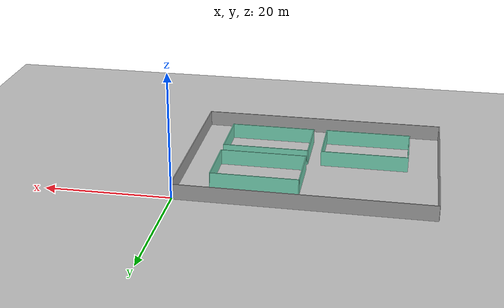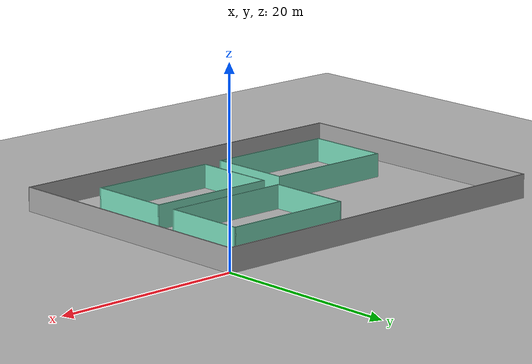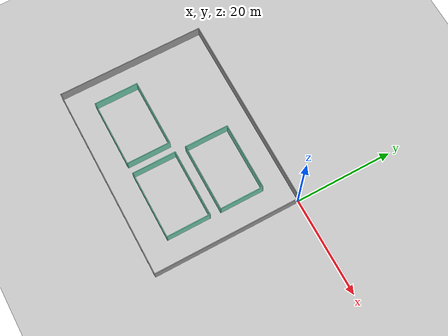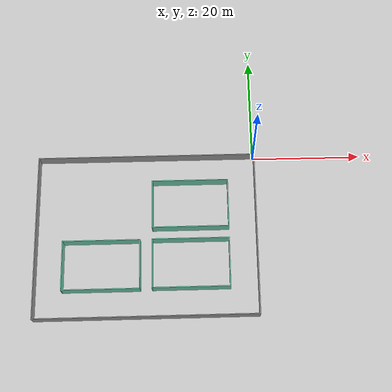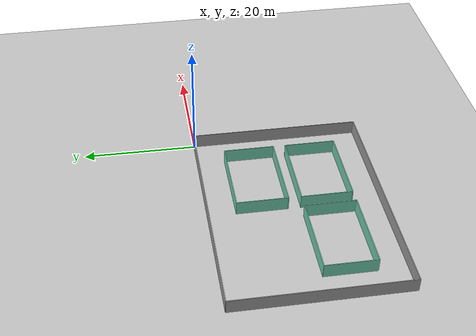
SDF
<sdf version="1.6">
 <world name="default">
  <model name="ground_plane">
   <static>1</static>
   <link name="link">
    <collision name="collision">
     <geometry><plane><normal>0 0 1</normal><size>100 100</size></plane></geometry>
     <surface>
      <contact><collide_bitmask>65535</collide_bitmask></contact>
      <friction><ode><mu>100</mu><mu2>50</mu2></ode></friction>
     </surface>
    </collision>
    <visual name="visual">
     <cast_shadows>0</cast_shadows>
     <geometry><plane><normal>0 0 1</normal><size>100 100</size></plane></geometry>
     <material>
      <script><uri>file://media/materials/scripts/gazebo.material</uri><name>Gazebo/Grey</name></script>
     </material>
    </visual>
   </link>
  </model>
  <model name="parking_simple_corrected">
   <pose>-19.938 -14.625 0 0 -0 0</pose>
   <link name="Wall_10">
    <collision name="Wall_10_Collision">
     <geometry><box><size>40 0.15 2.5</size></box></geometry>
     <pose>0 0 1.25 0 -0 0</pose>
    </collision>
    <visual name="Wall_10_Visual">
     <pose>0 0 1.25 0 -0 0</pose>
     <geometry><box><size>40 0.15 2.5</size></box></geometry>
     <material>
      <script><uri>file://media/materials/scripts/gazebo.material</uri><name>Gazebo/Grey</name></script>
      <ambient>1 1 1 1</ambient>
     </material>
     <meta><layer>0</layer></meta>
    </visual>
    <pose>0.083523 -15.1329 0 0 0 -3.1407</pose>
   </link>
   <link name="Wall_11">
    <collision name="Wall_11_Collision">
     <geometry><box><size>30 0.15 2.5</size></box></geometry>
     <pose>0 0 1.25 0 -0 0</pose>
    </collision>
    <visual name="Wall_11_Visual">
     <pose>0 0 1.25 0 -0 0</pose>
     <geometry><box><size>30 0.15 2.5</size></box></geometry>
     <material>
      <script><uri>file://media/materials/scripts/gazebo.material</uri><name>Gazebo/Grey</name></script>
      <ambient>1 1 1 1</ambient>
     </material>
     <meta><layer>0</layer></meta>
    </visual>
    <pose>-19.8425 -0.225652 0 0 -0 1.57086</pose>
   </link>
   <link name="Wall_19">
    <collision name="Wall_19_Collision">
     <geometry><box><size>14 0.15 2.5</size></box></geometry>
     <pose>0 0 1.25 0 -0 0</pose>
    </collision>
    <visual name="Wall_19_Visual">
     <pose>0 0 1.25 0 -0 0</pose>
     <geometry><box><size>14 0.15 2.5</size></box></geometry>
     <material>
      <script><uri>file://media/materials/scripts/gazebo.material</uri><name>Gazebo/Grey</name></script>
      <ambient>0.435294 0.796078 0.67451 1</ambient>
     </material>
     <meta><layer>0</layer></meta>
    </visual>
    <pose>-8.00087 -1.30088 0 0 -0 0</pose>
   </link>
   <link name="Wall_20">
    <collision name="Wall_20_Collision">
     <geometry><box><size>9.02484 0.15 2.5</size></box></geometry>
     <pose>0 0 1.25 0 -0 0</pose>
    </collision>
    <visual name="Wall_20_Visual">
     <pose>0 0 1.25 0 -0 0</pose>
     <geometry><box><size>9.02484 0.15 2.5</size></box></geometry>
     <material>
      <script><uri>file://media/materials/scripts/gazebo.material</uri><name>Gazebo/Grey</name></script>
      <ambient>0.435294 0.796078 0.67451 1</ambient>
     </material>
     <meta><layer>0</layer></meta>
    </visual>
    <pose>-1.07587 -5.73838 0 0 0 -1.5708</pose>
   </link>
   <link name="Wall_21">
    <collision name="Wall_21_Collision">
     <geometry><box><size>14 0.15 2.5</size></box></geometry>
     <pose>0 0 1.25 0 -0 0</pose>
    </collision>
    <visual name="Wall_21_Visual">
     <pose>0 0 1.25 0 -0 0</pose>
     <geometry><box><size>14 0.15 2.5</size></box></geometry>
     <material>
      <script><uri>file://media/materials/scripts/gazebo.material</uri><name>Gazebo/Grey</name></script>
      <ambient>0.435294 0.796078 0.67451 1</ambient>
     </material>
     <meta><layer>0</layer></meta>
    </visual>
    <pose>-8.00087 -10.1759 0 0 -0 3.14159</pose>
   </link>
   <link name="Wall_22">
    <collision name="Wall_22_Collision">
     <geometry><box><size>9 0.15 2.5</size></box></geometry>
     <pose>0 0 1.25 0 -0 0</pose>
    </collision>
    <visual name="Wall_22_Visual">
     <pose>0 0 1.25 0 -0 0</pose>
     <geometry><box><size>9 0.15 2.5</size></box></geometry>
     <material>
      <script><uri>file://media/materials/scripts/gazebo.material</uri><name>Gazebo/Grey</name></script>
      <ambient>0.435294 0.796078 0.67451 1</ambient>
     </material>
     <meta><layer>0</layer></meta>
    </visual>
    <pose>-14.9259 -5.75088 0 0 -0 1.5708</pose>
   </link>
   <link name="Wall_27">
    <collision name="Wall_27_Collision">
     <geometry><box><size>14 0.15 2.5</size></box></geometry>
     <pose>0 0 1.25 0 -0 0</pose>
    </collision>
    <visual name="Wall_27_Visual">
     <pose>0 0 1.25 0 -0 0</pose>
     <geometry><box><size>14 0.15 2.5</size></box></geometry>
     <material>
      <script><uri>file://media/materials/scripts/gazebo.material</uri><name>Gazebo/Grey</name></script>
      <ambient>0.435294 0.796078 0.67451 1</ambient>
     </material>
     <meta><layer>0</layer></meta>
    </visual>
    <pose>8.05513 -1.24888 0 0 -0 0</pose>
   </link>
   <link name="Wall_28">
    <collision name="Wall_28_Collision">
     <geometry><box><size>9 0.15 2.5</size></box></geometry>
     <pose>0 0 1.25 0 -0 0</pose>
    </collision>
    <visual name="Wall_28_Visual">
     <pose>0 0 1.25 0 -0 0</pose>
     <geometry><box><size>9 0.15 2.5</size></box></geometry>
     <material>
      <script><uri>file://media/materials/scripts/gazebo.material</uri><name>Gazebo/Grey</name></script>
      <ambient>0.435294 0.796078 0.67451 1</ambient>
     </material>
     <meta><layer>0</layer></meta>
    </visual>
    <pose>14.9801 -5.67388 0 0 0 -1.5708</pose>
   </link>
   <link name="Wall_29">
    <collision name="Wall_29_Collision">
     <geometry><box><size>14 0.15 2.5</size></box></geometry>
     <pose>0 0 1.25 0 -0 0</pose>
    </collision>
    <visual name="Wall_29_Visual">
     <pose>0 0 1.25 0 -0 0</pose>
     <geometry><box><size>14 0.15 2.5</size></box></geometry>
     <material>
      <script><uri>file://media/materials/scripts/gazebo.material</uri><name>Gazebo/Grey</name></script>
      <ambient>0.435294 0.796078 0.67451 1</ambient>
     </material>
     <meta><layer>0</layer></meta>
    </visual>
    <pose>8.05513 -10.0989 0 0 -0 3.14159</pose>
   </link>
   <link name="Wall_30">
    <collision name="Wall_30_Collision">
     <geometry><box><size>9 0.15 2.5</size></box></geometry>
     <pose>0 0 1.25 0 -0 0</pose>
    </collision>
    <visual name="Wall_30_Visual">
     <pose>0 0 1.25 0 -0 0</pose>
     <geometry><box><size>9 0.15 2.5</size></box></geometry>
     <material>
      <script><uri>file://media/materials/scripts/gazebo.material</uri><name>Gazebo/Grey</name></script>
      <ambient>0.435294 0.796078 0.67451 1</ambient>
     </material>
     <meta><layer>0</layer></meta>
    </visual>
    <pose>1.13013 -5.67388 0 0 -0 1.5708</pose>
   </link>
   <link name="Wall_32">
    <collision name="Wall_32_Collision">
     <geometry><box><size>14 0.15 2.5</size></box></geometry>
     <pose>0 0 1.25 0 -0 0</pose>
    </collision>
    <visual name="Wall_32_Visual">
     <pose>0 0 1.25 0 -0 0</pose>
     <geometry><box><size>14 0.15 2.5</size></box></geometry>
     <material>
      <script><uri>file://media/materials/scripts/gazebo.material</uri><name>Gazebo/Grey</name></script>
      <ambient>0.435294 0.796078 0.67451 1</ambient>
     </material>
     <meta><layer>0</layer></meta>
    </visual>
    <pose>8.07613 9.80912 0 0 -0 0</pose>
   </link>
   <link name="Wall_33">
    <collision name="Wall_33_Collision">
     <geometry><box><size>9 0.15 2.5</size></box></geometry>
     <pose>0 0 1.25 0 -0 0</pose>
    </collision>
    <visual name="Wall_33_Visual">
     <pose>0 0 1.25 0 -0 0</pose>
     <geometry><box><size>9 0.15 2.5</size></box></geometry>
     <material>
      <script><uri>file://media/materials/scripts/gazebo.material</uri><name>Gazebo/Grey</name></script>
      <ambient>0.435294 0.796078 0.67451 1</ambient>
     </material>
     <meta><layer>0</layer></meta>
    </visual>
    <pose>15.0011 5.38412 0 0 0 -1.5708</pose>
   </link>
   <link name="Wall_34">
    <collision name="Wall_34_Collision">
     <geometry><box><size>14 0.15 2.5</size></box></geometry>
     <pose>0 0 1.25 0 -0 0</pose>
    </collision>
    <visual name="Wall_34_Visual">
     <pose>0 0 1.25 0 -0 0</pose>
     <geometry><box><size>14 0.15 2.5</size></box></geometry>
     <material>
      <script><uri>file://media/materials/scripts/gazebo.material</uri><name>Gazebo/Grey</name></script>
      <ambient>0.435294 0.796078 0.67451 1</ambient>
     </material>
     <meta><layer>0</layer></meta>
    </visual>
    <pose>8.07613 0.959122 0 0 -0 3.14159</pose>
   </link>
   <link name="Wall_35">
    <collision name="Wall_35_Collision">
     <geometry><box><size>9 0.15 2.5</size></box></geometry>
     <pose>0 0 1.25 0 -0 0</pose>
    </collision>
    <visual name="Wall_35_Visual">
     <pose>0 0 1.25 0 -0 0</pose>
     <geometry><box><size>9 0.15 2.5</size></box></geometry>
     <material>
      <script><uri>file://media/materials/scripts/gazebo.material</uri><name>Gazebo/Grey</name></script>
      <ambient>0.435294 0.796078 0.67451 1</ambient>
     </material>
     <meta><layer>0</layer></meta>
    </visual>
    <pose>1.15113 5.38412 0 0 -0 1.5708</pose>
   </link>
   <link name="Wall_8">
    <collision name="Wall_8_Collision">
     <geometry><box><size>40 0.15 2.5</size></box></geometry>
     <pose>0 0 1.25 0 -0 0</pose>
    </collision>
    <visual name="Wall_8_Visual">
     <pose>0 0 1.25 0 -0 0</pose>
     <geometry><box><size>40 0.15 2.5</size></box></geometry>
     <material>
      <script><uri>file://media/materials/scripts/gazebo.material</uri><name>Gazebo/Grey</name></script>
      <ambient>1 1 1 1</ambient>
     </material>
     <meta><layer>0</layer></meta>
    </visual>
    <pose>0.13679 14.7464 0 0 0 -0.000577</pose>
   </link>
   <link name="Wall_9">
    <collision name="Wall_9_Collision">
     <geometry><box><size>30 0.15 2.5</size></box></geometry>
     <pose>0 0 1.25 0 -0 0</pose>
    </collision>
    <visual name="Wall_9_Visual">
     <pose>0 0 1.25 0 -0 0</pose>
     <geometry><box><size>30 0.15 2.5</size></box></geometry>
     <material>
      <script><uri>file://media/materials/scripts/gazebo.material</uri><name>Gazebo/Grey</name></script>
      <ambient>1 1 1 1</ambient>
     </material>
     <meta><layer>0</layer></meta>
    </visual>
    <pose>20.0352 -0.190104 0 0 0 -1.57258</pose>
   </link>
   <static>1</static>
  </model>
  <model name="ground_plane">
   <static>1</static>
   <link name="link">
    <collision name="collision">
     <geometry><plane><normal>0 0 1</normal><size>100 100</size></plane></geometry>
     <surface>
      <contact><collide_bitmask>65535</collide_bitmask></contact>
      <friction><ode><mu>100</mu><mu2>50</mu2></ode></friction>
     </surface>
    </collision>
    <visual name="visual">
     <cast_shadows>0</cast_shadows>
     <geometry><plane><normal>0 0 1</normal><size>100 100</size></plane></geometry>
     <material>
      <script><uri>file://media/materials/scripts/gazebo.material</uri><name>Gazebo/Grey</name></script>
     </material>
    </visual>
   </link>
  </model>
 </world>
</sdf>
